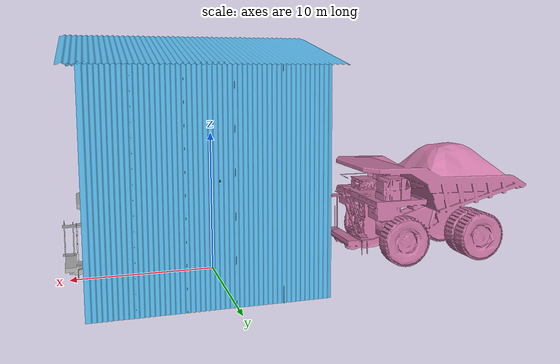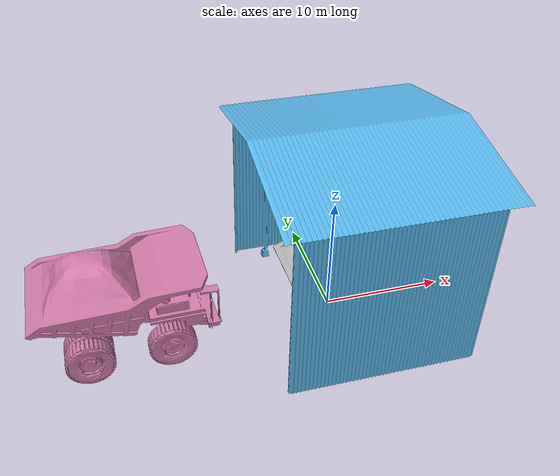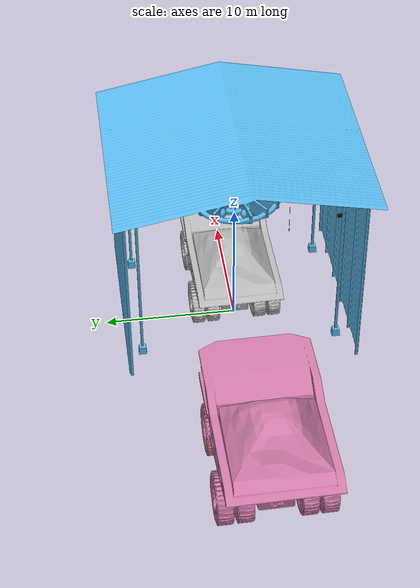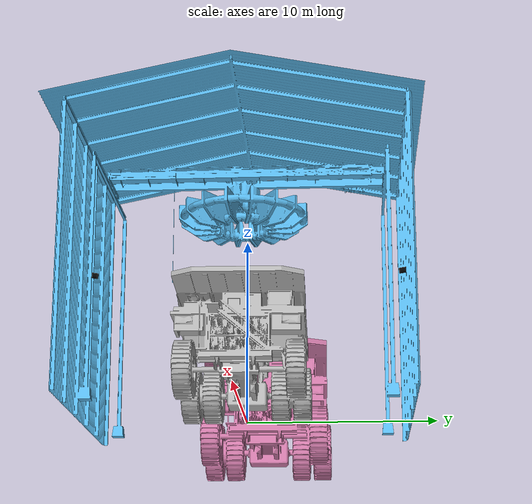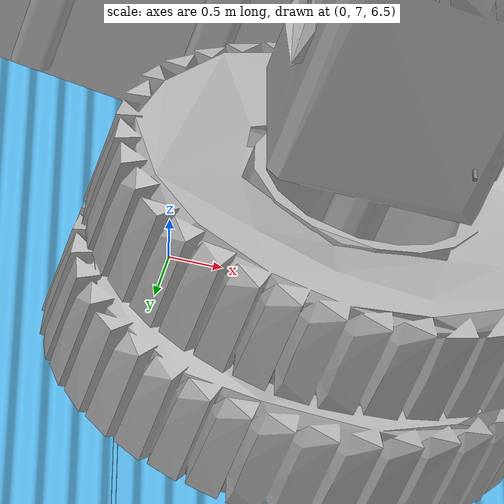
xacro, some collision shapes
<?xml version="1.0"?>
<robot name="nextore_system" xmlns:xacro="http://ros.org/wiki/xacro">

<!--========================================== Constants ============================================-->

    <xacro:property name="M_PI"   value="3.14159265359" />

<!--========================================== Materials ============================================-->

<material name="Neobotix/Black">
    <color rgba="0.0 0.0 0.0 1.0"/>
</material>

<material name="Neobotix/Blue">
    <color rgba="0.0 0.0 0.8 1.0"/>
</material>

<material name="Neobotix/Green">
    <color rgba="0.0 0.8 0.0 1.0"/>
</material>

<material name="Neobotix/Grey">
    <color rgba="0.7 0.7 0.7 1.0"/>
</material>

<material name="Neobotix/Grey2">
    <color rgba="0.9 0.9 0.9 1.0"/>
</material>

<material name="Neobotix/Red">
    <color rgba="0.8 0.0 0.0 1.0"/>
</material>

<material name="Neobotix/White">
    <color rgba="1.0 1.0 1.0 1.0"/>
</material>

<material name="Neobotix/Yellow">
    <color rgba="1.0 1.0 0 1"/>
</material>

<material name="Neobotix/Aluminum">
    <color rgba="0.5 0.5 0.5 1"/>
</material>

<!--==================================== Gazebo Link References =====================================-->

<gazebo reference="base_link">
    <gravity>true</gravity>
    <self_collide>false</self_collide>
    <material value="Gazebo/Grey"/>
</gazebo>

<gazebo reference="base_footprint">
    <gravity>true</gravity>
    <self_collide>false</self_collide>
    <material value="Gazebo/Grey"/>
</gazebo>

<!--========================================= Base Macro ============================================-->

<!--The root link base_link has an inertia specified in the URDF,
    but KDL does not support a root link with an inertia. As a
    workaround, you can add an extra base_footprint link to your URDF. -->
<link name="base_footprint" />

<link name="base_link">
    <visual>
        <geometry>
          <mesh filename="package://working/models/Truck/shed_with_crane_simplified.stl"/>
        </geometry>
        <origin xyz="0 0 0" rpy="0 0 0" />
    </visual>
    <collision>
        <geometry>
          <mesh filename="package://working/models/Truck/shed_with_crane_simplified.stl"/>
        </geometry>
        <origin xyz="0 0 0" rpy="0 0 0" />
    </collision>
    <inertial>
        <mass value="1000" />
        <origin xyz="0 0 0" rpy="0 0 0"/>
        <inertia ixx="48167" ixy="0.00" ixz="0.00"
                 iyx="0.00" iyy="48167" iyz="0.00"
                 izx="0.00" izy="0.00" izz="48167"/>
    </inertial>
    <static> true </static>
</link>

<joint name="base_footprint_joint" type="fixed">
   <parent link="base_footprint"/>
   <child  link="base_link"/>
   <origin xyz="0 0 0" rpy="0 0 0"/>
</joint>

<!--================================ 1st Gazebo Sick Laser References ===================================-->

<gazebo reference="3d_lidar_1">
    <material value="Gazebo/Black"/>
    <sensor name="3d_lidar_sensor_1" type="ray">
        <pose>0 0 0 0 0 0</pose>
        <visualize>false</visualize>
        <update_rate>20</update_rate>
        <ray>
            <scan>
                <horizontal>
                    <samples>361</samples>
                    <resolution>1</resolution>
                    <min_angle>-${M_PI}</min_angle>
                    <max_angle>${M_PI}</max_angle>
                </horizontal>
                <vertical>
                    <samples>25</samples>
                    <resolution>1</resolution>
                    <min_angle>${(90-19.2)*M_PI/180.0}</min_angle>
                    <max_angle>${90*M_PI/180.0}</max_angle>
                </vertical>
            </scan>
            <range>
                <min>0.10</min>
                <max>260.0</max>
                <resolution>0.02</resolution>
            </range>
            <noise>
                <type>gaussian</type>
                <mean>0.0</mean>
                <stddev>0.01</stddev>
            </noise>
        </ray>
        <plugin name="gazebo_ros_laser_controller" filename="libgazebo_ros_velodyne_laser.so">
            <topicName>lidar3D_1/scan</topicName>
            <frameName>3d_lidar_1</frameName>
            <organize_cloud>false</organize_cloud>
            <min_range>0.10</min_range>
            <max_range>260.0</max_range>
            <gaussianNoise>0.008</gaussianNoise>
          </plugin>
    </sensor>
</gazebo>

<!-- 6DOF joints and links -->
<!-- Prismatic joints -->
<!--on x axis-->

<joint name="lidar_1_pris1_joint" type="prismatic">
    <axis xyz="1 0 0"/>
    <origin rpy="-${100*M_PI/180} 0 0" xyz="1 -8.3 8"/>
    <parent link="base_footprint"/>
    <child link="lidar_1_link_1"/>
    <dynamics damping="100.0" friction="100.0"/>
    <limit effort="1000" velocity="3" lower="-20" upper="20" />
</joint>

<link name="lidar_1_link_1">
    <inertial>
        <mass value="1"/>
        <origin rpy="0 0 0" xyz="0 0 0"/>
        <inertia ixx="1.0" ixy="0" ixz="0" iyy="1.0" iyz="0" izz="1.0"/>
    </inertial>
    <visual>
        <origin rpy="0 0 0" xyz="0 0 0"/>
        <geometry>
            <box size="0.01 0.01 0.01" />
        </geometry>
        <material name="Neobotix/Black"/>
    </visual>
    <collision>
        <origin rpy="0 0 0" xyz="0 0 0"/>
        <geometry>
            <box size="0.001 0.001 0.001" />
        </geometry>
    </collision>
</link>

<!--on y axis-->

<joint name="lidar_1_pris2_joint" type="prismatic">
    <axis xyz="0 1 0"/>
    <origin rpy="0 0 0" xyz="0 0 0"/>
    <parent link="lidar_1_link_1"/>
    <child link="lidar_1_link_2"/>
    <dynamics damping="100.0" friction="100.0"/>
    <limit effort="1000" velocity="3" lower="-20" upper="20" />
</joint>

<link name="lidar_1_link_2">
    <inertial>
        <mass value="1"/>
        <origin rpy="0 0 0" xyz="0 0 0"/>
        <inertia ixx="1.0" ixy="0" ixz="0" iyy="1.0" iyz="0" izz="1.0"/>
    </inertial>
    <visual>
        <origin rpy="0 0 0" xyz="0 0 0"/>
        <geometry>
            <box size="0.01 0.01 0.01" />
        </geometry>
        <material name="Neobotix/Black"/>
    </visual>
    <collision>
        <origin rpy="0 0 0" xyz="0 0 0"/>
        <geometry>
            <box size="0.001 0.001 0.001" />
        </geometry>
    </collision>
</link>

<!--on z axis-->

<joint name="lidar_1_pris3_joint" type="prismatic">
    <axis xyz="0 0 1"/>
    <origin rpy="0 0 0" xyz="0 0 0"/>
    <parent link="lidar_1_link_2"/>
    <child link="lidar_1_link_3"/>
    <dynamics damping="100.0" friction="100.0"/>
    <limit effort="1000" velocity="3" lower="-20" upper="20" />
</joint>

<link name="lidar_1_link_3">
    <inertial>
        <mass value="1"/>
        <origin rpy="0 0 0" xyz="0 0 0"/>
        <inertia ixx="1.0" ixy="0" ixz="0" iyy="1.0" iyz="0" izz="1.0"/>
    </inertial>
    <visual>
        <origin rpy="0 0 0" xyz="0 0 0"/>
        <geometry>
            <box size="0.01 0.01 0.01" />
        </geometry>
        <material name="Neobotix/Black"/>
    </visual>
    <collision>
        <origin rpy="0 0 0" xyz="0 0 0"/>
        <geometry>
            <box size="0.001 0.001 0.001" />
        </geometry>
    </collision>
</link>

<!-- Revolute joints -->
<!--around x axis-->

<joint name="lidar_1_rev1_joint" type="revolute">
    <axis xyz="1 0 0"/>
    <origin rpy="0 0 0" xyz="0 0 0"/>
    <parent link="lidar_1_link_3"/>
    <child link="lidar_1_link_4"/>
    <dynamics damping="100.0" friction="100.0"/>
    <limit effort="1000" velocity="3" lower="-${M_PI}" upper="${M_PI}" />
</joint>

<link name="lidar_1_link_4">
    <inertial>
        <mass value="1"/>
        <origin rpy="0 0 0" xyz="0 0 0"/>
        <inertia ixx="1.0" ixy="0" ixz="0" iyy="1.0" iyz="0" izz="1.0"/>
    </inertial>
    <visual>
        <origin rpy="0 0 0" xyz="0 0 0"/>
        <geometry>
            <box size="0.01 0.01 0.01" />
        </geometry>
        <material name="Neobotix/Black"/>
    </visual>
    <collision>
        <origin rpy="0 0 0" xyz="0 0 0"/>
        <geometry>
            <box size="0.001 0.001 0.001" />
        </geometry>
    </collision>
</link>

<!--around y axis-->

<joint name="lidar_1_rev2_joint" type="revolute">
    <axis xyz="0 1 0"/>
    <origin rpy="0 0 0" xyz="0 0 0"/>
    <parent link="lidar_1_link_4"/>
    <child link="lidar_1_link_5"/>
    <dynamics damping="100.0" friction="100.0"/>
    <limit effort="1000" velocity="3" lower="-${M_PI}" upper="${M_PI}" />
</joint>

<link name="lidar_1_link_5">
    <inertial>
        <mass value="1"/>
        <origin rpy="0 0 0" xyz="0 0 0"/>
        <inertia ixx="1.0" ixy="0" ixz="0" iyy="1.0" iyz="0" izz="1.0"/>
    </inertial>
    <visual>
        <origin rpy="0 0 0" xyz="0 0 0"/>
        <geometry>
            <box size="0.01 0.01 0.01" />
        </geometry>
        <material name="Neobotix/Black"/>
    </visual>
    <collision>
        <origin rpy="0 0 0" xyz="0 0 0"/>
        <geometry>
            <box size="0.001 0.001 0.001" />
        </geometry>
    </collision>
</link>

<!--around z axis-->
<!--end-effector-->

<joint name="lidar_1_rev3_joint" type="revolute">
    <axis xyz="0 0 1"/>
    <origin rpy="0 0 0" xyz="0 0 0"/>
    <parent link="lidar_1_link_5"/>
    <child link="3d_lidar_1"/>
    <dynamics damping="100.0" friction="100.0"/>
    <limit effort="1000" velocity="3" lower="-${M_PI}" upper="${M_PI}" />
</joint>

<link name="3d_lidar_1" type="laser">
    <inertial>
        <mass value="1"/>
        <origin rpy="0 0 0" xyz="0 0 0"/>
        <inertia ixx="1.0" ixy="0" ixz="0" iyy="1.0" iyz="0" izz="1.0"/>
    </inertial>
    <visual>
        <origin rpy="0 0 0" xyz="0 0 0"/>
        <geometry>
            <cylinder length="0.45" radius="0.15"/>
        </geometry>
        <material name="Neobotix/Black"/>
    </visual>
    <collision>
        <origin rpy="0 0 0" xyz="0 0 0"/>
        <geometry>
            <cylinder length="0.1" radius="0.05"/>
        </geometry>
    </collision>
</link>

<!--================================ 2nd Gazebo Sick Laser References ===================================-->

<gazebo reference="3d_lidar_2">
    <material value="Gazebo/Black"/>
    <sensor name="3d_lidar_sensor_2" type="ray">
        <pose>0 0 0 0 0 0</pose>
        <visualize>false</visualize>
        <update_rate>20</update_rate>
        <ray>
            <scan>
                <horizontal>
                    <samples>361</samples>
                    <resolution>1</resolution>
                    <min_angle>-${M_PI}</min_angle>
                    <max_angle>${M_PI}</max_angle>
                </horizontal>
                <vertical>
                    <samples>25</samples>
                    <resolution>1</resolution>
                    <min_angle>${(90-19.2)*M_PI/180.0}</min_angle>
                    <max_angle>${90*M_PI/180.0}</max_angle>
                </vertical>
            </scan>
            <range>
                <min>0.10</min>
                <max>260.0</max>
                <resolution>0.02</resolution>
            </range>
            <noise>
                <type>gaussian</type>
                <mean>0.0</mean>
                <stddev>0.01</stddev>
            </noise>
        </ray>
        <plugin name="gazebo_ros_laser_controller" filename="libgazebo_ros_velodyne_laser.so">
            <topicName>lidar3D_2/scan</topicName>
            <frameName>3d_lidar_2</frameName>
            <organize_cloud>false</organize_cloud>
            <min_range>0.10</min_range>
            <max_range>260.0</max_range>
            <gaussianNoise>0.008</gaussianNoise>
          </plugin>
    </sensor>
</gazebo>

<!-- 6DOF joints and links -->
<!-- Prismatic joints -->
<!--on x axis-->

<joint name="lidar_2_pris1_joint" type="prismatic">
    <axis xyz="1 0 0"/>
    <origin rpy="${100*M_PI/180} 0 0" xyz="1 8.4 8"/>
    <parent link="base_footprint"/>
    <child link="lidar_2_link_1"/>
    <dynamics damping="100.0" friction="100.0"/>
    <limit effort="1000" velocity="3" lower="-20" upper="20" />
</joint>

<link name="lidar_2_link_1">
    <inertial>
        <mass value="1"/>
        <origin rpy="0 0 0" xyz="0 0 0"/>
        <inertia ixx="1.0" ixy="0" ixz="0" iyy="1.0" iyz="0" izz="1.0"/>
    </inertial>
    <visual>
        <origin rpy="0 0 0" xyz="0 0 0"/>
        <geometry>
            <box size="0.01 0.01 0.01" />
        </geometry>
        <material name="Neobotix/Black"/>
    </visual>
    <collision>
        <origin rpy="0 0 0" xyz="0 0 0"/>
        <geometry>
            <box size="0.001 0.001 0.001" />
        </geometry>
    </collision>
</link>

<!--on y axis-->

<joint name="lidar_2_pris2_joint" type="prismatic">
    <axis xyz="0 1 0"/>
    <origin rpy="0 0 0" xyz="0 0 0"/>
    <parent link="lidar_2_link_1"/>
    <child link="lidar_2_link_2"/>
    <dynamics damping="100.0" friction="100.0"/>
    <limit effort="1000" velocity="3" lower="-20" upper="20" />
</joint>

<link name="lidar_2_link_2">
    <inertial>
        <mass value="1"/>
        <origin rpy="0 0 0" xyz="0 0 0"/>
        <inertia ixx="1.0" ixy="0" ixz="0" iyy="1.0" iyz="0" izz="1.0"/>
    </inertial>
    <visual>
        <origin rpy="0 0 0" xyz="0 0 0"/>
        <geometry>
            <box size="0.01 0.01 0.01" />
        </geometry>
        <material name="Neobotix/Black"/>
    </visual>
    <collision>
        <origin rpy="0 0 0" xyz="0 0 0"/>
        <geometry>
            <box size="0.001 0.001 0.001" />
        </geometry>
    </collision>
</link>

<!--on z axis-->

<joint name="lidar_2_pris3_joint" type="prismatic">
    <axis xyz="0 0 1"/>
    <origin rpy="0 0 0" xyz="0 0 0"/>
    <parent link="lidar_2_link_2"/>
    <child link="lidar_2_link_3"/>
    <dynamics damping="100.0" friction="100.0"/>
    <limit effort="1000" velocity="3" lower="-20" upper="20" />
</joint>

<link name="lidar_2_link_3">
    <inertial>
        <mass value="1"/>
        <origin rpy="0 0 0" xyz="0 0 0"/>
        <inertia ixx="1.0" ixy="0" ixz="0" iyy="1.0" iyz="0" izz="1.0"/>
    </inertial>
    <visual>
        <origin rpy="0 0 0" xyz="0 0 0"/>
        <geometry>
            <box size="0.01 0.01 0.01" />
        </geometry>
        <material name="Neobotix/Black"/>
    </visual>
    <collision>
        <origin rpy="0 0 0" xyz="0 0 0"/>
        <geometry>
            <box size="0.001 0.001 0.001" />
        </geometry>
    </collision>
</link>

<!-- Revolute joints -->
<!--around x axis-->

<joint name="lidar_2_rev1_joint" type="revolute">
    <axis xyz="1 0 0"/>
    <origin rpy="0 0 0" xyz="0 0 0"/>
    <parent link="lidar_2_link_3"/>
    <child link="lidar_2_link_4"/>
    <dynamics damping="100.0" friction="100.0"/>
    <limit effort="1000" velocity="3" lower="-${M_PI}" upper="${M_PI}" />
</joint>

<link name="lidar_2_link_4">
    <inertial>
        <mass value="1"/>
        <origin rpy="0 0 0" xyz="0 0 0"/>
        <inertia ixx="1.0" ixy="0" ixz="0" iyy="1.0" iyz="0" izz="1.0"/>
    </inertial>
    <visual>
        <origin rpy="0 0 0" xyz="0 0 0"/>
        <geometry>
            <box size="0.01 0.01 0.01" />
        </geometry>
        <material name="Neobotix/Black"/>
    </visual>
    <collision>
        <origin rpy="0 0 0" xyz="0 0 0"/>
        <geometry>
            <box size="0.001 0.001 0.001" />
        </geometry>
    </collision>
</link>

<!--around y axis-->

<joint name="lidar_2_rev2_joint" type="revolute">
    <axis xyz="0 1 0"/>
    <origin rpy="0 0 0" xyz="0 0 0"/>
    <parent link="lidar_2_link_4"/>
    <child link="lidar_2_link_5"/>
    <dynamics damping="100.0" friction="100.0"/>
    <limit effort="1000" velocity="3" lower="-${M_PI}" upper="${M_PI}" />
</joint>

<link name="lidar_2_link_5">
    <inertial>
        <mass value="1"/>
        <origin rpy="0 0 0" xyz="0 0 0"/>
        <inertia ixx="1.0" ixy="0" ixz="0" iyy="1.0" iyz="0" izz="1.0"/>
    </inertial>
    <visual>
        <origin rpy="0 0 0" xyz="0 0 0"/>
        <geometry>
            <box size="0.01 0.01 0.01" />
        </geometry>
        <material name="Neobotix/Black"/>
    </visual>
    <collision>
        <origin rpy="0 0 0" xyz="0 0 0"/>
        <geometry>
            <box size="0.001 0.001 0.001" />
        </geometry>
    </collision>
</link>

<!--around z axis-->
<!--end-effector-->

<joint name="lidar_2_rev3_joint" type="revolute">
    <axis xyz="0 0 1"/>
    <origin rpy="0 0 0" xyz="0 0 0"/>
    <parent link="lidar_2_link_5"/>
    <child link="3d_lidar_2"/>
    <dynamics damping="100.0" friction="100.0"/>
    <limit effort="1000" velocity="3" lower="-${M_PI}" upper="${M_PI}" />
</joint>

<link name="3d_lidar_2" type="laser">
    <inertial>
        <mass value="1"/>
        <origin rpy="0 0 0" xyz="0 0 0"/>
        <inertia ixx="1.0" ixy="0" ixz="0" iyy="1.0" iyz="0" izz="1.0"/>
    </inertial>
    <visual>
        <origin rpy="0 0 0" xyz="0 0 0"/>
        <geometry>
            <cylinder length="0.45" radius="0.15"/>
        </geometry>
        <material name="Neobotix/Black"/>
    </visual>
    <collision>
        <origin rpy="0 0 0" xyz="0 0 0"/>
        <geometry>
            <cylinder length="0.1" radius="0.05"/>
        </geometry>
    </collision>
</link>

<!--================================= Big truck - Hitachi truck ===================================-->

<joint name="Hitachi_truck_joint" type="prismatic">
    <axis xyz="1 0 0"/>
    <origin rpy="0 0 0" xyz="-20 0 0"/>
    <parent link="base_footprint"/>
    <child link="Hitachi_truck"/>
    <dynamics damping="100.0" friction="100.0"/>
    <limit effort="10000" velocity="4" lower="-20" upper="20" />
</joint>

<link name="Hitachi_truck">
    <visual>
        <geometry>
          <mesh filename="package://working/models/Truck/Hitachi_EH4000AC_truck_with_load_simplified.stl"/>
        </geometry>
        <origin xyz="0 0 0" rpy="0 0 0" />
    </visual>
    <collision>
        <geometry>
          <mesh filename="package://working/models/Truck/Hitachi_EH4000AC_truck_with_load_simplified.stl"/>
        </geometry>
        <origin xyz="0 0 0" rpy="0 0 0" />
    </collision>
    <inertial>
        <mass value="1000" />
        <origin xyz="0 0 0" rpy="0 0 0"/>
        <inertia ixx="48167" ixy="0.00" ixz="0.00"
                 iyx="0.00" iyy="48167" iyz="0.00"
                 izx="0.00" izy="0.00" izz="48167"/>
    </inertial>
</link>

<!--============================== Small truck - Caterpillar truck ================================-->

<joint name="Cat_truck_joint" type="prismatic">
    <axis xyz="1 0 0"/>
    <origin rpy="0 0 0" xyz="0 0 0"/>
    <parent link="base_footprint"/>
    <child link="Cat_truck"/>
    <dynamics damping="100.0" friction="100.0"/>
    <limit effort="10000" velocity="4" lower="-20" upper="20" />
</joint>

<link name="Cat_truck">
    <visual>
        <geometry>
          <mesh filename="package://working/models/Truck/Cat_785C_truck_with_load_simplified.stl"/>
        </geometry>
        <origin xyz="0 0 0" rpy="0 0 0" />
    </visual>
    <collision>
        <geometry>
          <mesh filename="package://working/models/Truck/Cat_785C_truck_with_load_simplified.stl"/>
        </geometry>
        <origin xyz="0 0 0" rpy="0 0 0" />
    </collision>
    <inertial>
        <mass value="1000" />
        <origin xyz="0 0 0" rpy="0 0 0"/>
        <inertia ixx="48167" ixy="0.00" ixz="0.00"
                 iyx="0.00" iyy="48167" iyz="0.00"
                 izx="0.00" izy="0.00" izz="48167"/>
    </inertial>
</link>

<!--================================ ROS control part ==================================-->
<!--plugin-->
  <gazebo>
    <plugin name="gazebo_ros_control" filename="libgazebo_ros_control.so">
      <robotNamespace>/nextore_system</robotNamespace>
    </plugin>
  </gazebo>

<!--lidar1-->
  <transmission name="lidar_1_tran_1">
    <type>transmission_interface/SimpleTransmission</type>
    <joint name="lidar_1_pris1_joint">
      <hardwareInterface>hardware_interface/EffortJointInterface</hardwareInterface>
    </joint>
    <actuator name="lidar_1_pris1_motor">
      <hardwareInterface>hardware_interface/EffortJointInterface</hardwareInterface>
      <mechanicalReduction>1</mechanicalReduction>
    </actuator>
  </transmission>

  <transmission name="lidar_1_tran_2">
    <type>transmission_interface/SimpleTransmission</type>
    <joint name="lidar_1_pris2_joint">
      <hardwareInterface>hardware_interface/EffortJointInterface</hardwareInterface>
    </joint>
    <actuator name="lidar_1_pris2_motor">
      <hardwareInterface>hardware_interface/EffortJointInterface</hardwareInterface>
      <mechanicalReduction>1</mechanicalReduction>
    </actuator>
  </transmission>

  <transmission name="lidar_1_tran_3">
    <type>transmission_interface/SimpleTransmission</type>
    <joint name="lidar_1_pris3_joint">
      <hardwareInterface>hardware_interface/EffortJointInterface</hardwareInterface>
    </joint>
    <actuator name="lidar_1_pris3_motor">
      <hardwareInterface>hardware_interface/EffortJointInterface</hardwareInterface>
      <mechanicalReduction>1</mechanicalReduction>
    </actuator>
  </transmission>

  <transmission name="lidar_1_tran_4">
    <type>transmission_interface/SimpleTransmission</type>
    <joint name="lidar_1_rev1_joint">
      <hardwareInterface>hardware_interface/EffortJointInterface</hardwareInterface>
    </joint>
    <actuator name="lidar_1_rev1_motor">
      <hardwareInterface>hardware_interface/EffortJointInterface</hardwareInterface>
      <mechanicalReduction>1</mechanicalReduction>
    </actuator>
  </transmission>

  <transmission name="lidar_1_tran_5">
    <type>transmission_interface/SimpleTransmission</type>
    <joint name="lidar_1_rev2_joint">
      <hardwareInterface>hardware_interface/EffortJointInterface</hardwareInterface>
    </joint>
    <actuator name="lidar_1_rev2_motor">
      <hardwareInterface>hardware_interface/EffortJointInterface</hardwareInterface>
      <mechanicalReduction>1</mechanicalReduction>
    </actuator>
  </transmission>

  <transmission name="lidar_1_tran_6">
    <type>transmission_interface/SimpleTransmission</type>
    <joint name="lidar_1_rev3_joint">
      <hardwareInterface>hardware_interface/EffortJointInterface</hardwareInterface>
    </joint>
    <actuator name="lidar_1_rev3_motor">
      <hardwareInterface>hardware_interface/EffortJointInterface</hardwareInterface>
      <mechanicalReduction>1</mechanicalReduction>
    </actuator>
  </transmission>

<!--lidar2-->
  <transmission name="lidar_2_tran_1">
    <type>transmission_interface/SimpleTransmission</type>
    <joint name="lidar_2_pris1_joint">
      <hardwareInterface>hardware_interface/EffortJointInterface</hardwareInterface>
    </joint>
    <actuator name="lidar_2_pris1_motor">
      <hardwareInterface>hardware_interface/EffortJointInterface</hardwareInterface>
      <mechanicalReduction>1</mechanicalReduction>
    </actuator>
  </transmission>

  <transmission name="lidar_2_tran_2">
    <type>transmission_interface/SimpleTransmission</type>
    <joint name="lidar_2_pris2_joint">
      <hardwareInterface>hardware_interface/EffortJointInterface</hardwareInterface>
    </joint>
    <actuator name="lidar_2_pris2_motor">
      <hardwareInterface>hardware_interface/EffortJointInterface</hardwareInterface>
      <mechanicalReduction>1</mechanicalReduction>
    </actuator>
  </transmission>

  <transmission name="lidar_2_tran_3">
    <type>transmission_interface/SimpleTransmission</type>
    <joint name="lidar_2_pris3_joint">
      <hardwareInterface>hardware_interface/EffortJointInterface</hardwareInterface>
    </joint>
    <actuator name="lidar_2_pris3_motor">
      <hardwareInterface>hardware_interface/EffortJointInterface</hardwareInterface>
      <mechanicalReduction>1</mechanicalReduction>
    </actuator>
  </transmission>

  <transmission name="lidar_2_tran_4">
    <type>transmission_interface/SimpleTransmission</type>
    <joint name="lidar_2_rev1_joint">
      <hardwareInterface>hardware_interface/EffortJointInterface</hardwareInterface>
    </joint>
    <actuator name="lidar_2_rev1_motor">
      <hardwareInterface>hardware_interface/EffortJointInterface</hardwareInterface>
      <mechanicalReduction>1</mechanicalReduction>
    </actuator>
  </transmission>

  <transmission name="lidar_2_tran_5">
    <type>transmission_interface/SimpleTransmission</type>
    <joint name="lidar_2_rev2_joint">
      <hardwareInterface>hardware_interface/EffortJointInterface</hardwareInterface>
    </joint>
    <actuator name="lidar_2_rev2_motor">
      <hardwareInterface>hardware_interface/EffortJointInterface</hardwareInterface>
      <mechanicalReduction>1</mechanicalReduction>
    </actuator>
  </transmission>

  <transmission name="lidar_2_tran_6">
    <type>transmission_interface/SimpleTransmission</type>
    <joint name="lidar_2_rev3_joint">
      <hardwareInterface>hardware_interface/EffortJointInterface</hardwareInterface>
    </joint>
    <actuator name="lidar_2_rev3_motor">
      <hardwareInterface>hardware_interface/EffortJointInterface</hardwareInterface>
      <mechanicalReduction>1</mechanicalReduction>
    </actuator>
  </transmission>

<!--trucks-->
  <transmission name="Hitachi_truck_tran">
    <type>transmission_interface/SimpleTransmission</type>
    <joint name="Hitachi_truck_joint">
      <hardwareInterface>hardware_interface/EffortJointInterface</hardwareInterface>
    </joint>
    <actuator name="Hitachi_truck_motor">
      <hardwareInterface>hardware_interface/EffortJointInterface</hardwareInterface>
      <mechanicalReduction>1</mechanicalReduction>
    </actuator>
  </transmission>

  <transmission name="Cat_truck_tran">
    <type>transmission_interface/SimpleTransmission</type>
    <joint name="Cat_truck_joint">
      <hardwareInterface>hardware_interface/EffortJointInterface</hardwareInterface>
    </joint>
    <actuator name="Cat_truck_motor">
      <hardwareInterface>hardware_interface/EffortJointInterface</hardwareInterface>
      <mechanicalReduction>1</mechanicalReduction>
    </actuator>
  </transmission>

    <!-- Camera addition -->
     <link name="camera_link_front">
        <visual>
            <origin xyz="0.0149 0.0 0.0125" rpy="${M_PI/2} 0 ${M_PI/2}"/>
            <geometry>
                <mesh filename="package://realsense2_description/meshes/d435.dae" />
            </geometry>
            <material name="Neobotix/Aluminum"/>
        </visual>
        <collision>
            <origin xyz="0.0149 0.0 0.0125" rpy="${M_PI/2} 0 ${M_PI/2}"/>
            <geometry>
                <box size="0.02505 0.09 0.025"/>
            </geometry>
        </collision>
        <inertial>
            <mass value="0.564" />
            <origin xyz="0.0149 0.0 0.0125" rpy="${M_PI/2} 0 ${M_PI/2}"/>
            <inertia ixx="0.003881243" ixy="0.0" ixz="0.0" iyy="0.000498940" iyz="0.0" izz="0.003879257" />
        </inertial>
    </link>

    <joint name="camera_joint_front" type="fixed">
        <origin xyz="0.23 0 0.13" rpy="0 0 0"/>
        <axis xyz="0 1 0"/>
        <parent link="base_link"/>
        <child link="camera_link_front"/>
    </joint>

    <link name="camera_depth_frame_front"/>

    <joint name="camera_depth_joint_front" type="fixed">
        <origin xyz="0 0 0" rpy="${-M_PI/2} 0 ${-M_PI/2}" />
        <parent link="camera_link_front" />
        <child link="camera_depth_frame_front" />
    </joint>

    <gazebo reference="camera_link_front">
        <sensor type="depth" name="sensor_d435">
            <visualize>true</visualize>
            <update_rate>24</update_rate>
            <camera>
                <horizontal_fov>1.3962634</horizontal_fov>
                <image>
                    <format>B8G8R8</format>
                    <!-- HD 1080 x 720 -->
                    <!-- SD  640 x 480 -->
                    <!-- LD  320 x 240 -->
                    <width>1080</width>
                    <height>720</height>
                </image>
                <clip>
                    <near>0.15</near>
                    <far>20</far>
                </clip>
                <noise>
                    <type>gaussian</type>
                    <mean>0.0</mean>
                    <stddev>0.007</stddev>
                </noise>
            </camera>
            <plugin name="sensor_d435_controller" filename="libgazebo_ros_openni_kinect.so">
                <baseline>0.2</baseline>
                <alwaysOn>true</alwaysOn>
                <updateRate>0.0</updateRate>
                <cameraName>sensor_d435_front</cameraName>
                <imageTopicName>/sensor_d435_front/image_raw</imageTopicName>
                <cameraInfoTopicName>/sensor_d435_front/color/camera_info</cameraInfoTopicName>
                <depthImageTopicName>/sensor_d435_front/depth/image_rect_raw</depthImageTopicName>
                <depthImageInfoTopicName>/sensor_d435_front/depth/camera_info</depthImageInfoTopicName>
                <pointCloudTopicName>/sensor_d435_front/depth/points</pointCloudTopicName>
                <frameName>camera_depth_frame_front</frameName>
                <pointCloudCutoff>0.0</pointCloudCutoff>
                <distortionK1>0.00000001</distortionK1>
                <distortionK2>0.00000001</distortionK2>
                <distortionK3>0.00000001</distortionK3>
                <distortionT1>0.00000001</distortionT1>
                <distortionT2>0.00000001</distortionT2>
                <CxPrime>0</CxPrime>
                <Cx>0</Cx>
                <Cy>0</Cy>
                <focalLength>0.0</focalLength>
                <hackBaseline>0.0</hackBaseline>
            </plugin>
        </sensor>
    </gazebo>

</robot>
